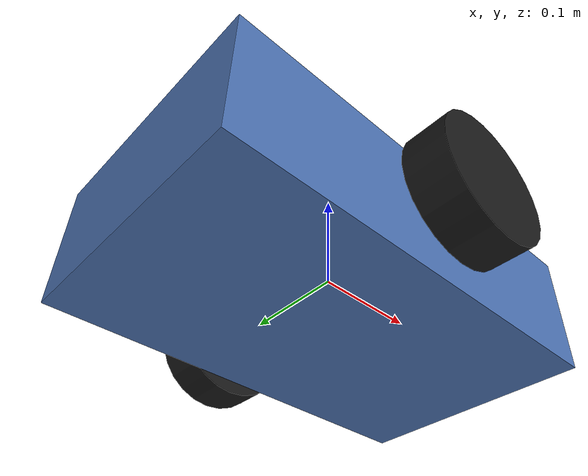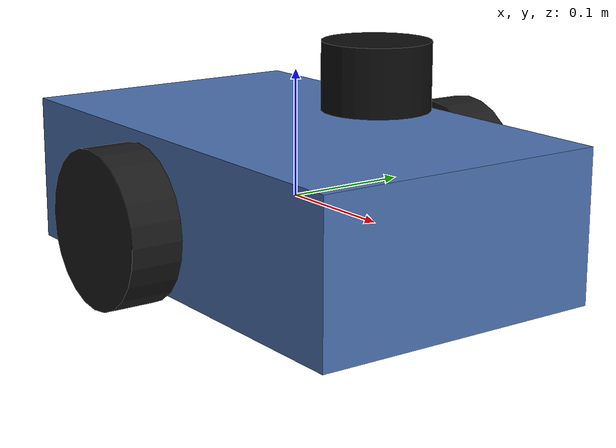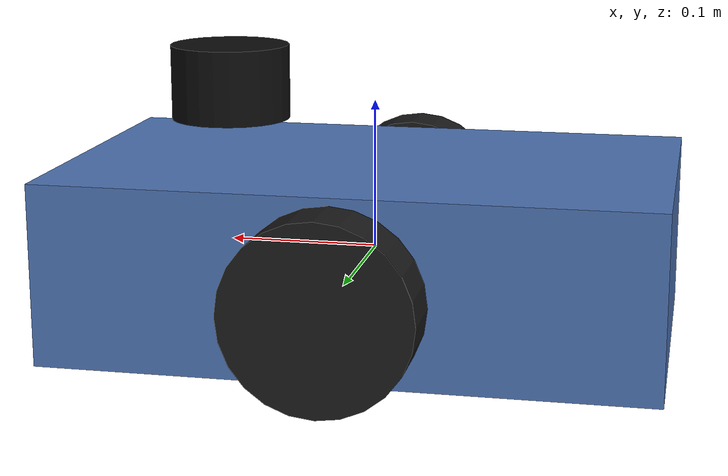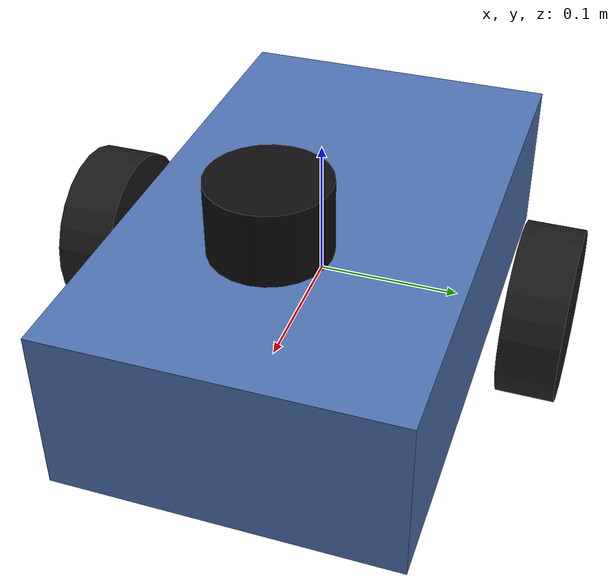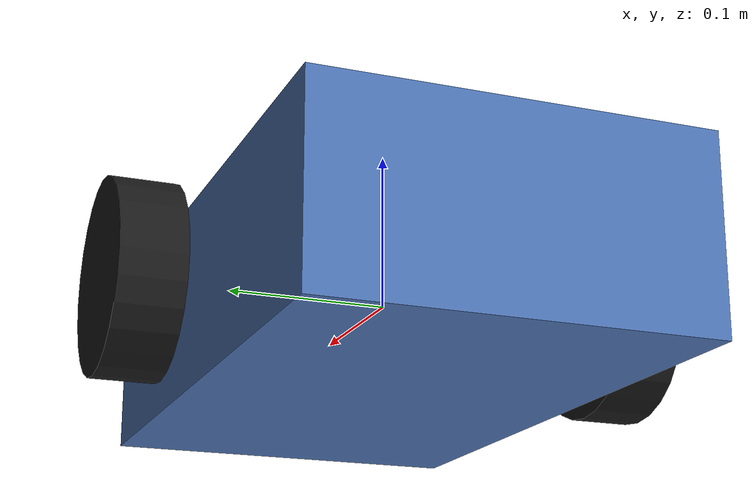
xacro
<?xml version="1.0"?>
<robot name="corridor_bot" xmlns:xacro="http://www.ros.org/wiki/xacro">

  <xacro:property name="wheel_radius" value="0.06"/>
  <xacro:property name="wheel_sep"    value="0.32"/>
  <xacro:property name="chassis_x"    value="0.40"/>
  <xacro:property name="chassis_y"    value="0.24"/>
  <xacro:property name="chassis_z"    value="0.12"/>

  <!-- ===================== LINKS ===================== -->
  <link name="base_link">
    <inertial>
      <mass value="6.0"/>
      <inertia ixx="0.06" iyy="0.10" izz="0.12" ixy="0" ixz="0" iyz="0"/>
    </inertial>
    <collision>
      <geometry><box size="${chassis_x} ${chassis_y} ${chassis_z}"/></geometry>
    </collision>
    <visual>
      <geometry><box size="${chassis_x} ${chassis_y} ${chassis_z}"/></geometry>
      <material name="steel"><color rgba="0.3 0.45 0.7 1"/></material>
    </visual>
  </link>

  <xacro:macro name="wheel" params="name y">
    <link name="${name}">
      <inertial>
        <mass value="0.4"/>
        <inertia ixx="0.001" iyy="0.001" izz="0.001" ixy="0" ixz="0" iyz="0"/>
      </inertial>
      <collision>
        <origin rpy="1.5708 0 0"/>
        <geometry><cylinder radius="${wheel_radius}" length="0.04"/></geometry>
      </collision>
      <visual>
        <origin rpy="1.5708 0 0"/>
        <geometry><cylinder radius="${wheel_radius}" length="0.04"/></geometry>
        <material name="rubber"><color rgba="0.1 0.1 0.1 1"/></material>
      </visual>
    </link>
    <joint name="${name}_joint" type="continuous">
      <parent link="base_link"/>
      <child link="${name}"/>
      <origin xyz="0 ${y} 0"/>
      <axis xyz="0 1 0"/>
    </joint>
  </xacro:macro>

  <xacro:wheel name="left_wheel"  y="${ wheel_sep/2}"/>
  <xacro:wheel name="right_wheel" y="${-wheel_sep/2}"/>

  <!-- passive caster -->
  <link name="caster">
    <inertial><mass value="0.2"/>
      <inertia ixx="0.0001" iyy="0.0001" izz="0.0001" ixy="0" ixz="0" iyz="0"/>
    </inertial>
    <collision><geometry><sphere radius="0.03"/></geometry></collision>
    <visual><geometry><sphere radius="0.03"/></geometry></visual>
  </link>
  <joint name="caster_joint" type="fixed">
    <parent link="base_link"/><child link="caster"/>
    <origin xyz="0.15 0 ${-wheel_radius+0.03}"/>
  </joint>

  <!-- LiDAR -->
  <link name="lidar_link">
    <inertial><mass value="0.2"/>
      <inertia ixx="0.0002" iyy="0.0002" izz="0.0002" ixy="0" ixz="0" iyz="0"/>
    </inertial>
    <collision><geometry><cylinder radius="0.04" length="0.05"/></geometry></collision>
    <visual><geometry><cylinder radius="0.04" length="0.05"/></geometry>
      <material name="black"><color rgba="0.05 0.05 0.05 1"/></material></visual>
  </link>
  <joint name="lidar_joint" type="fixed">
    <parent link="base_link"/><child link="lidar_link"/>
    <origin xyz="0.1 0 ${chassis_z/2+0.05}"/>
  </joint>

  <!-- IMU -->
  <link name="imu_link">
    <inertial><mass value="0.02"/>
      <inertia ixx="1e-5" iyy="1e-5" izz="1e-5" ixy="0" ixz="0" iyz="0"/>
    </inertial>
  </link>
  <joint name="imu_joint" type="fixed">
    <parent link="base_link"/><child link="imu_link"/>
    <origin xyz="0 0 ${chassis_z/2}"/>
  </joint>

  <!-- ===================== GAZEBO ===================== -->
  <gazebo reference="left_wheel"><mu1>1.0</mu1><mu2>1.0</mu2></gazebo>
  <gazebo reference="right_wheel"><mu1>1.0</mu1><mu2>1.0</mu2></gazebo>
  <gazebo reference="caster"><mu1>0.0</mu1><mu2>0.0</mu2></gazebo>

  <gazebo>
    <plugin filename="gz-sim-diff-drive-system" name="gz::sim::systems::DiffDrive">
      <left_joint>left_wheel_joint</left_joint>
      <right_joint>right_wheel_joint</right_joint>
      <wheel_separation>${wheel_sep}</wheel_separation>
      <wheel_radius>${wheel_radius}</wheel_radius>
      <topic>/cmd_vel</topic>
      <odom_topic>/diff_odom</odom_topic>
      <tf_topic>/tf</tf_topic>
      <frame_id>odom</frame_id>
      <child_frame_id>base_link</child_frame_id>
      <odom_publish_frequency>50</odom_publish_frequency>
      <max_linear_acceleration>2.0</max_linear_acceleration>
    </plugin>

    <plugin filename="gz-sim-joint-state-publisher-system"
            name="gz::sim::systems::JointStatePublisher">
      <topic>/joint_states</topic>
    </plugin>

    <!-- Ground-truth odometry (from true model pose). The noise node in B2
         subscribes here and republishes a corrupted version. -->
    <plugin filename="gz-sim-odometry-publisher-system"
            name="gz::sim::systems::OdometryPublisher">
      <odom_frame>map</odom_frame>
      <robot_base_frame>base_link</robot_base_frame>
      <dimensions>3</dimensions>
      <odom_topic>/ground_truth/odom</odom_topic>
      <odom_publish_frequency>50</odom_publish_frequency>
    </plugin>
  </gazebo>

  <!-- 16-channel 3D LiDAR -->
  <gazebo reference="lidar_link">
    <sensor name="lidar3d" type="gpu_lidar">
      <topic>/lidar</topic>
      <gz_frame_id>lidar_link</gz_frame_id>
      <update_rate>10</update_rate>
      <always_on>1</always_on>
      <visualize>true</visualize>
      <lidar>
        <scan>
          <horizontal>
            <samples>360</samples>
            <resolution>1</resolution>
            <min_angle>-3.14159</min_angle>
            <max_angle>3.14159</max_angle>
          </horizontal>
          <vertical>
            <samples>16</samples>
            <resolution>1</resolution>
            <min_angle>-0.2618</min_angle>   <!-- -15 deg -->
            <max_angle>0.2618</max_angle>    <!-- +15 deg -->
          </vertical>
        </scan>
        <range><min>0.1</min><max>8.0</max><resolution>0.01</resolution></range>
        <noise><type>gaussian</type><mean>0.0</mean><stddev>0.02</stddev></noise>
      </lidar>
    </sensor>
  </gazebo>

  <!-- 6-axis IMU (accel + gyro). Kept near-clean here; the assignment's gyro
       bias/drift is injected by the noise node, not by Gazebo. -->
  <gazebo reference="imu_link">
    <sensor name="imu" type="imu">
      <topic>/imu</topic>
      <gz_frame_id>imu_link</gz_frame_id>
      <update_rate>100</update_rate>
      <always_on>1</always_on>
      <imu>
        <angular_velocity>
          <x><noise type="gaussian"><mean>0</mean><stddev>0.0002</stddev></noise></x>
          <y><noise type="gaussian"><mean>0</mean><stddev>0.0002</stddev></noise></y>
          <z><noise type="gaussian"><mean>0</mean><stddev>0.0002</stddev></noise></z>
        </angular_velocity>
        <linear_acceleration>
          <x><noise type="gaussian"><mean>0</mean><stddev>0.01</stddev></noise></x>
          <y><noise type="gaussian"><mean>0</mean><stddev>0.01</stddev></noise></y>
          <z><noise type="gaussian"><mean>0</mean><stddev>0.01</stddev></noise></z>
        </linear_acceleration>
      </imu>
    </sensor>
  </gazebo>

</robot>
